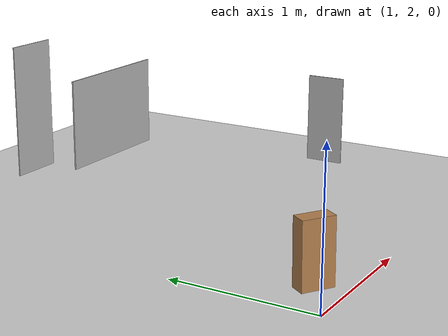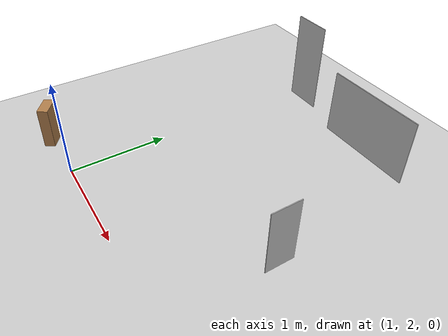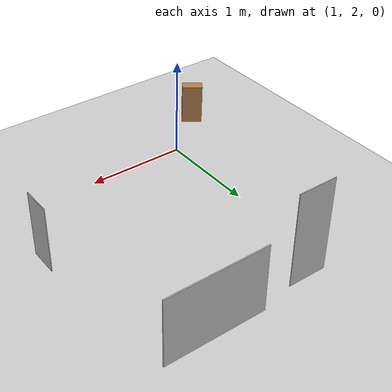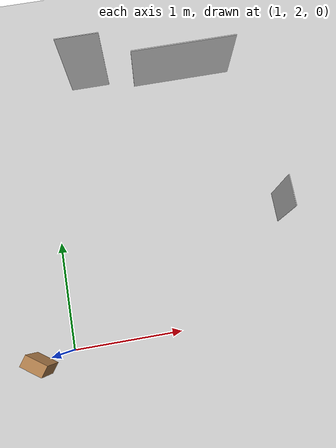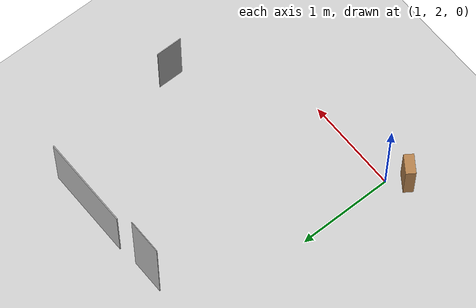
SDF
<sdf version="1.4">
 <world name="default">
  <light name="sun" type="directional">
   <pose>-1 -1 1.5 0 -0 0</pose>
   <diffuse>0.8 0.8 0.8 1</diffuse>
   <specular>0.2 0.2 0.2 1</specular>
   <attenuation>
    <range>1000</range>
    <constant>0.9</constant>
    <linear>0.01</linear>
    <quadratic>0.001</quadratic>
   </attenuation>
   <direction>-0.5 0 -1</direction>
  </light>
  <model name="ground_plane">
   <static>1</static>
   <link name="link">
    <collision name="collision">
     <geometry><plane><normal>0 0 1</normal><size>100 100</size></plane></geometry>
     <surface><friction><ode><mu>100</mu><mu2>50</mu2></ode></friction></surface>
    </collision>
    <visual name="visual">
     <cast_shadows>0</cast_shadows>
     <geometry><plane><normal>0 0 1</normal><size>100 100</size></plane></geometry>
     <material>
      <script><uri>file://media/materials/scripts/gazebo.material</uri><name>Gazebo/Grey</name></script>
     </material>
    </visual>
    <velocity_decay><linear>0</linear><angular>0</angular></velocity_decay>
    <gravity>0</gravity>
   </link>
  </model>
  <physics type="ode">
   <max_step_size>0.1</max_step_size>
   <real_time_factor>1</real_time_factor>
   <real_time_update_rate>10</real_time_update_rate>
   <max_contacts>3</max_contacts>
   <gravity>0 0 -9.8</gravity>
   <ode><solver><min_step_size>0.1</min_step_size><iters>1</iters></solver></ode>
  </physics>
  <scene><ambient>0.4 0.4 0.4 1</ambient><background>0.7 0.7 0.7 1</background><shadows>1</shadows></scene>
  <model name="fire_hose_reel">
   <static>1</static>
   <link name="link">
    <visual name="visual">
     <geometry><box><size>0.88 0.36 0.007</size></box></geometry>
     <material>
      <script>
       <uri>model://fire_hose_reel/materials/scripts</uri>
       <uri>model://fire_hose_reel/materials/textures</uri>
       <name>fire_hose_reel</name>
      </script>
     </material>
    </visual>
    <velocity_decay><linear>0</linear><angular>0</angular></velocity_decay>
    <gravity>0</gravity>
   </link>
   <pose>1.52645 4.42605 0.757458 0.000572 -1.5707 1.57013</pose>
  </model>
  <spherical_coordinates>
   <surface_model>EARTH_WGS84</surface_model>
   <latitude_deg>0</latitude_deg>
   <longitude_deg>0</longitude_deg>
   <elevation>0</elevation>
   <heading_deg>0</heading_deg>
  </spherical_coordinates>
  <model name="camera_projection_mapping">
   <link name="projector_link">
    <inertial>
     <mass>1</mass>
     <inertia><ixx>0.1</ixx><ixy>0</ixy><ixz>0</ixz><iyy>0.1</iyy><iyz>0</iyz><izz>0.1</izz></inertia>
    </inertial>
    <visual name="projector_link_visual">
     <geometry><box><size>0.2 0.1 0.4</size></box></geometry>
     <material><script><name>Gazebo/Wood</name><uri>__default__</uri></script></material>
    </visual>
    <velocity_decay><linear>0</linear><angular>0</angular></velocity_decay>
    <sensor name="virtual_camera" type="camera">
     <camera name="projector_head">
      <horizontal_fov>0.705131</horizontal_fov>
      <image><width>1920</width><height>1080</height><format>R8G8B8</format></image>
      <clip><near>0.05</near><far>25</far></clip>
      <noise><type>gaussian</type><mean>0</mean><stddev>0</stddev></noise>
     </camera>
     <plugin name="camera_controller" filename="libgazebo_ros_camera.so">
      <alwaysOn>true</alwaysOn>
      <updateRate>30.0</updateRate>
      <cameraName>virtual_camera</cameraName>
      <imageTopicName>image_raw</imageTopicName>
      <cameraInfoTopicName>camera_info</cameraInfoTopicName>
      <frameName>camera_link</frameName>
      <CxPrime>0</CxPrime>
      <Cx>0</Cx>
      <Cy>0</Cy>
      <focalLength>0</focalLength>
      <hackBaseline>0.07</hackBaseline>
      <distortionK1>0</distortionK1>
      <distortionK2>0</distortionK2>
      <distortionK3>0</distortionK3>
      <distortionT1>0</distortionT1>
      <distortionT2>0</distortionT2>
      <robotNamespace>/</robotNamespace>
     </plugin>
    </sensor>
   </link>
   <static>1</static>
   <pose>0.777274 1.94839 0.46733 0.002194 0.013093 2.53552</pose>
  </model>
  <model name="fire_extinguisher_drawing_0">
   <static>1</static>
   <link name="link">
    <visual name="visual">
     <cast_shadows>0</cast_shadows>
     <geometry><box><size>0.63 0.27 0.007</size></box></geometry>
     <material>
      <script>
       <uri>model://fire_extinguisher_drawing/materials/scripts</uri>
       <uri>model://fire_extinguisher_drawing/materials/textures</uri>
       <name>fire_extinguisher_drawing</name>
      </script>
     </material>
    </visual>
    <velocity_decay><linear>0</linear><angular>0</angular></velocity_decay>
   </link>
   <pose>3.05294 2.96222 0.533827 0 -1.56645 0</pose>
  </model>
  <model name="electrical_drawing">
   <static>1</static>
   <link name="link">
    <visual name="visual">
     <cast_shadows>0</cast_shadows>
     <geometry><box><size>0.652 0.948 0.01</size></box></geometry>
     <material>
      <script>
       <uri>model://electrical_drawing/materials/scripts</uri>
       <uri>model://electrical_drawing/materials/textures</uri>
       <name>electrical_drawing</name>
      </script>
     </material>
    </visual>
    <velocity_decay><linear>0</linear><angular>0</angular></velocity_decay>
   </link>
   <pose>2.42271 4.42369 0.530308 -1.56963 -1.57074 -3.14142</pose>
  </model>
 </world>
</sdf>
